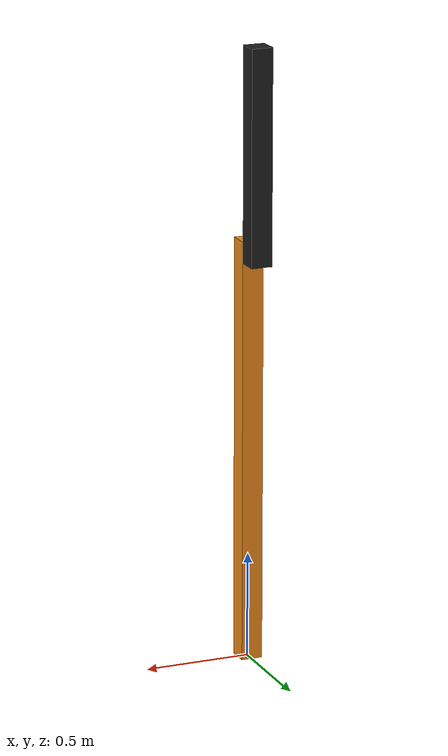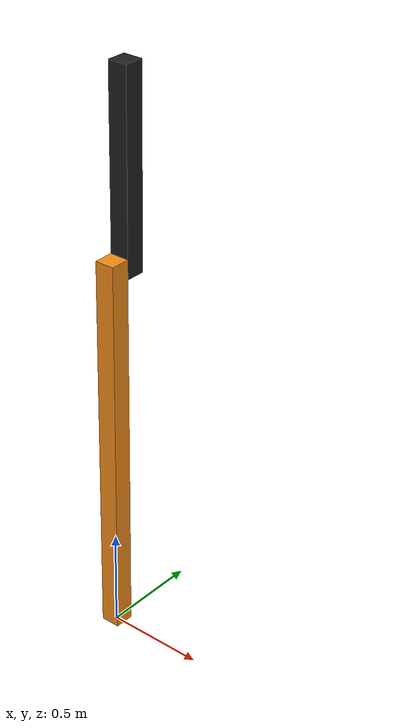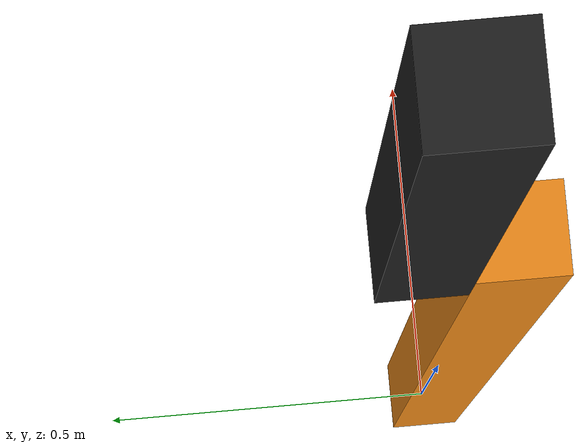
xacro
<?xml version="1.0"?>
<!-- Revolute-Revolute Manipulator -->
<robot name="rrbot" xmlns:xacro="http://www.ros.org/wiki/xacro">

    <!-- Constants for robot dimensions -->
  <xacro:property name="PI" value="3.1415926535897931"/>
  <xacro:property name="mass" value="1" /> <!-- arbitrary value for mass -->
  <xacro:property name="width" value="0.1" /> <!-- Square dimensions (widthxwidth) of beams -->
  <xacro:property name="height1" value="2" /> <!-- Link 1 -->
  <xacro:property name="height2" value="1" /> <!-- Link 2 -->
  <xacro:property name="height3" value="1" /> <!-- Link 3 -->
  <xacro:property name="camera_link" value="0.05" /> <!-- Size of square 'camera' box -->
  <xacro:property name="axel_offset" value="0.05" /> <!-- Space btw top of beam and the each joint -->

  <!-- Used for fixing robot to Gazebo 'base_link' -->
  <link name="world"/>

  <joint name="fixed" type="fixed">
    <parent link="world"/>
    <child link="link1"/>
  </joint>

  <!-- Base Link -->
  <link name="link1">
    <collision>
      <origin xyz="0 0 ${height1/2}" rpy="0 0 0"/>
      <geometry>
	      <box size="${width} ${width} ${height1}"/>
      </geometry>
    </collision>

    <visual>
      <origin xyz="0 0 ${height1/2}" rpy="0 0 0"/>
      <geometry>
        	<box size="${width} ${width} ${height1}"/>
      </geometry>
      <material name="orange"/>
    </visual>

    <inertial>
      <origin xyz="0 0 ${height1/2}" rpy="0 0 0"/>
      <mass value="${mass}"/>
      <inertia
	  ixx="${mass / 12.0 * (width*width + height1*height1)}" ixy="0.0" ixz="0.0"
	  iyy="${mass / 12.0 * (height1*height1 + width*width)}" iyz="0.0"
	  izz="${mass / 12.0 * (width*width + width*width)}"/>
    </inertial>
  </link>

  <joint name="joint1" type="continuous">
    <parent link="link1"/>
    <child link="link2"/>
    <origin xyz="0 ${width} ${height1 - axel_offset}" rpy="0 0 0"/>
    <axis xyz="0 1 0"/>
    <dynamics damping="0.7"/>
  </joint>

  <!-- Middle Link -->
  <link name="link2">
    <collision>
      <origin xyz="0 0 ${height2/2 - axel_offset}" rpy="0 0 0"/>
      <geometry>
	<box size="${width} ${width} ${height2}"/>
      </geometry>
    </collision>

    <visual>
      <origin xyz="0 0 ${height2/2 - axel_offset}" rpy="0 0 0"/>
      <geometry>
	<box size="${width} ${width} ${height2}"/>
      </geometry>
      <material name="black"/>
    </visual>

    <inertial>
      <origin xyz="0 0 ${height2/2 - axel_offset}" rpy="0 0 0"/>
      <mass value="${mass}"/>
      <inertia
	  ixx="${mass / 12.0 * (width*width + height2*height2)}" ixy="0.0" ixz="0.0"
	  iyy="${mass / 12.0 * (height2*height2 + width*width)}" iyz="0.0"
	  izz="${mass / 12.0 * (width*width + width*width)}"/>
    </inertial>
  </link>

  <transmission name="tran1">
    <type>transmission_interface/SimpleTransmission</type>
    <joint name="joint1">
      <hardwareInterface>hardware_interface/EffortJointInterface</hardwareInterface>
    </joint>
    <actuator name="motor1">
      <hardwareInterface>hardware_interface/EffortJointInterface</hardwareInterface>
      <mechanicalReduction>1</mechanicalReduction>
    </actuator>
  </transmission>

  <!-- ros_control plugin -->
  <gazebo>
    <plugin name="gazebo_ros_control" filename="libgazebo_ros_control.so">
      <robotNamespace>/rrbot</robotNamespace>
      <robotSimType>gazebo_ros_control/DefaultRobotHWSim</robotSimType>
    </plugin>
  </gazebo>

  <!-- Link1 -->
  <gazebo reference="link1">
    <material>Gazebo/Orange</material>
  </gazebo>

  <!-- camera -->
  <gazebo reference="link1">
    <sensor type="camera" name="camera1">
      <update_rate>30.0</update_rate>
      <camera name="head">
        <horizontal_fov>1.3962634</horizontal_fov>
        <image>
          <width>800</width>
          <height>800</height>
          <format>R8G8B8</format>
        </image>
        <clip>
          <near>0.02</near>
          <far>300</far>
        </clip>
        <noise>
          <type>gaussian</type>
          <!-- Noise is sampled independently per pixel on each frame.
               That pixel's noise value is added to each of its color
               channels, which at that point lie in the range [0,1]. -->
          <mean>0.0</mean>
          <stddev>0.007</stddev>
        </noise>
      </camera>
      <plugin name="camera_controller" filename="libgazebo_ros_camera.so">
        <alwaysOn>true</alwaysOn>
        <updateRate>0.0</updateRate>
        <cameraName>rrbot/camera1</cameraName>
        <imageTopicName>image_raw</imageTopicName>
        <cameraInfoTopicName>camera_info</cameraInfoTopicName>
        <frameName>link1</frameName>
        <!-- setting hackBaseline to anything but 0.0 will cause a misalignment
            between the gazebo sensor image and the frame it is supposed to
            be attached to -->
        <hackBaseline>0.0</hackBaseline>
        <distortionK1>0.0</distortionK1>
        <distortionK2>0.0</distortionK2>
        <distortionK3>0.0</distortionK3>
        <distortionT1>0.0</distortionT1>
        <distortionT2>0.0</distortionT2>
        <CxPrime>0</CxPrime>
        <Cx>0.0</Cx>
        <Cy>0.0</Cy>
        <focalLength>0.0</focalLength>
      </plugin>
    </sensor>
  </gazebo>

</robot>
